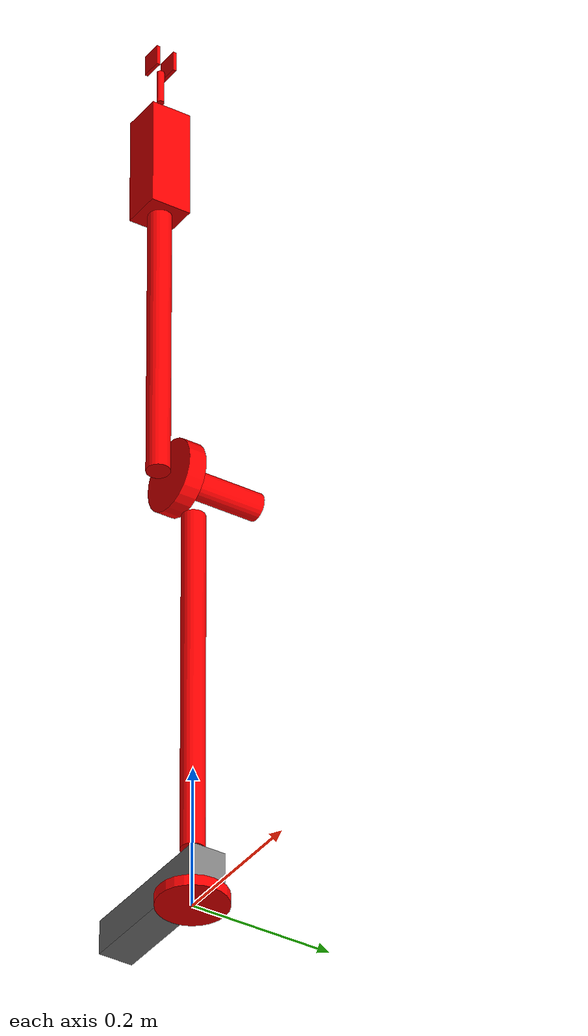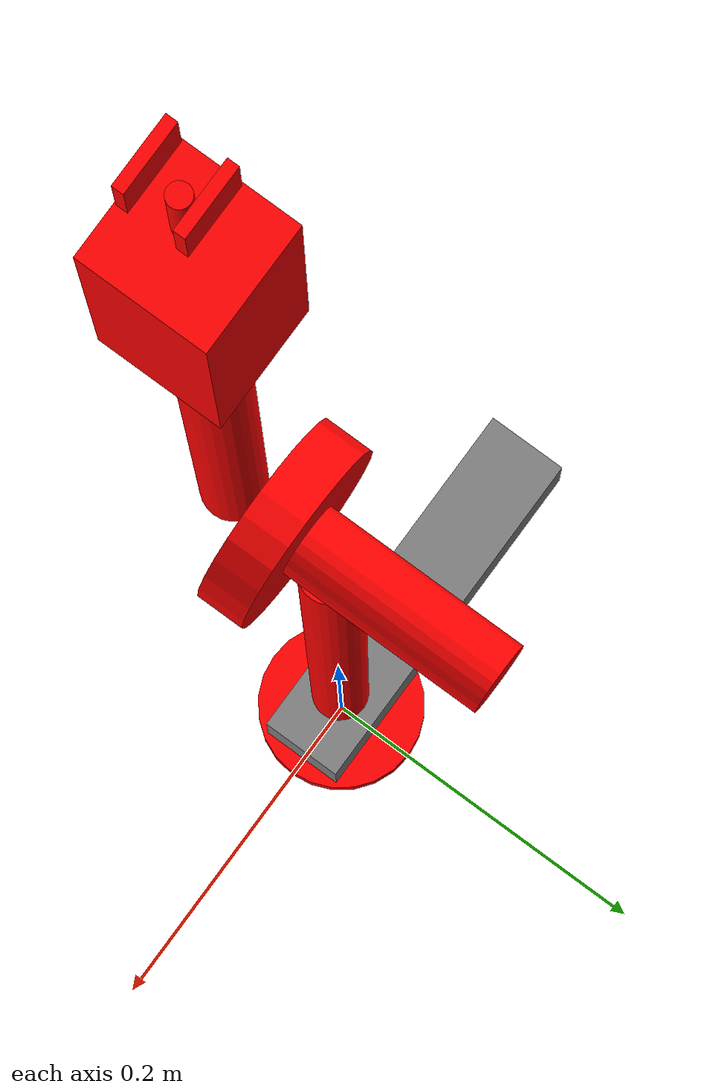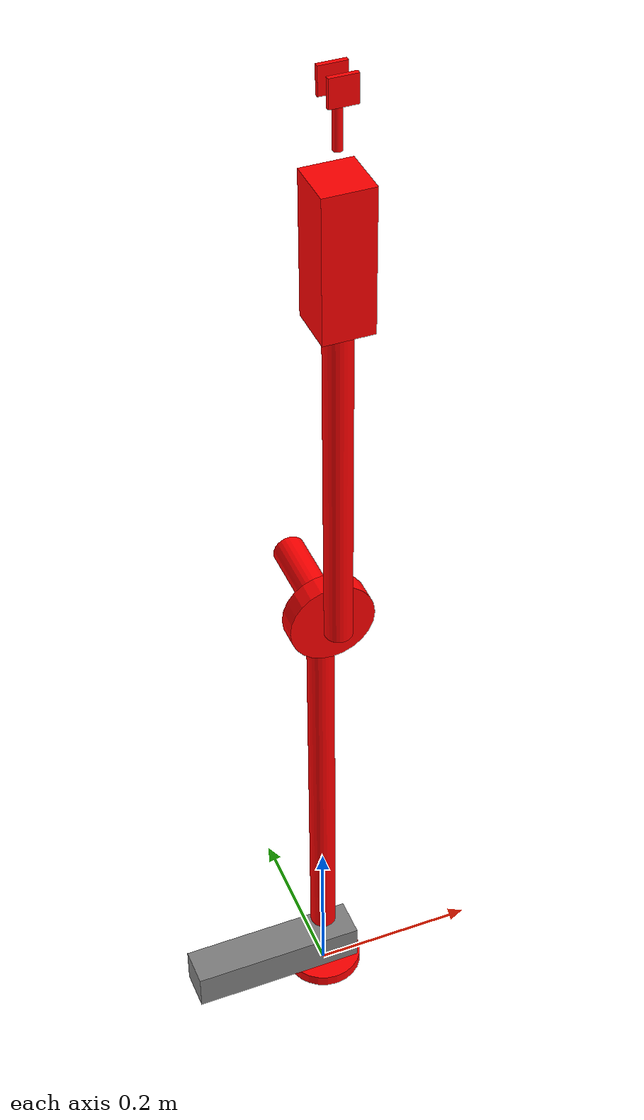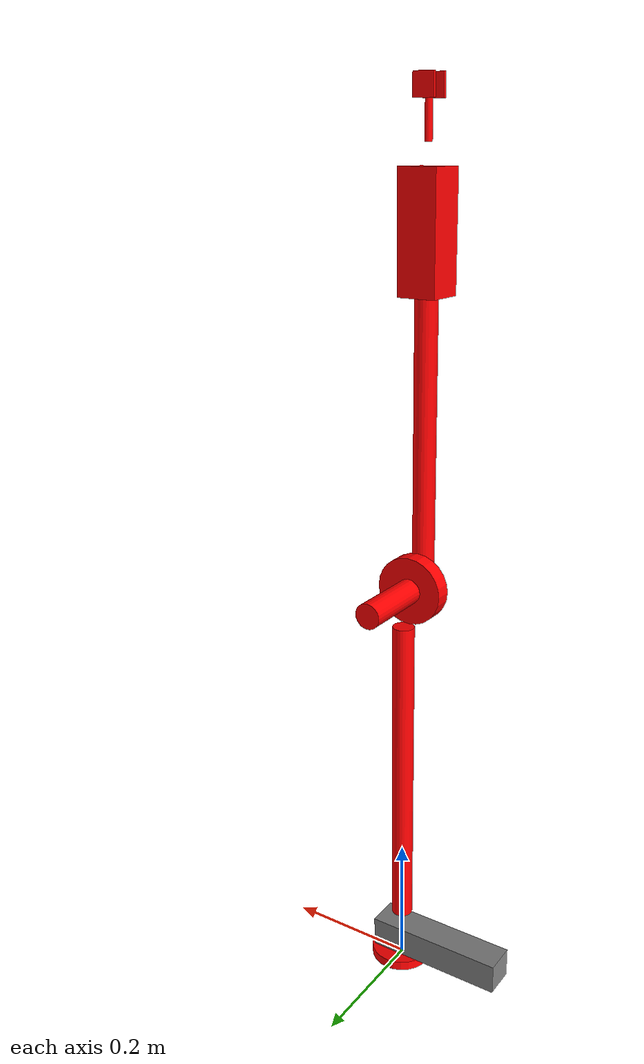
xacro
<?xml version="1.0"?>
<robot xmlns:xacro="http://www.ros.org/wiki/xacro" name="phoenix">
    <xacro:arg name="initial_positions_file" default="initial_positions.yaml" />

    <!-- Import phoenix urdf file -->
    <xacro:include filename="phoenix.xacro" />

    <!-- Import control_xacro -->
    <xacro:include filename="phoenix.ros2_control.xacro" />

    <xacro:phoenix_ros2_control name="FakeSystem" initial_positions_file="$(arg initial_positions_file)"/>

</robot>

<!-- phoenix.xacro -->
<robot name="phoenix" xmlns:xacro="http://www.ros.org/wiki/xacro">
    <xacro:include filename="phoenix_properties.xacro"/>

  <!-- create link fixed to the "world" -->
    <link name="world"/>

  <!-- Import r6bot ros2_control description -->

    <link name="base_link"/>

    <link name="swivel_link">
        <inertial>
            <origin xyz="0.0 0.0 0.0" rpy="0.0 0.0 0.0"/>
            <mass value="0.0"/>
            <inertia ixx="0.0" ixy="0.0" ixz="0.0" iyy="0.0" iyz="0.0" izz="0.0"/>
        </inertial>
        <visual>
            <origin xyz="0.0 0.0 ${-swivel_l/2}" rpy="0.0 0.0 0.0"/>
                <geometry>
                    <cylinder radius="${swivel_r}" length="${swivel_l}"/>
                </geometry>
            <material name="">
                <color rgba="1.0 0.0 0.0 1.0"/>
            </material>
        </visual>
        <collision>
            <origin xyz="0.0 0.0 ${-swivel_l/2}" rpy="0.0 0.0 0.0"/>
                <geometry>
                    <cylinder radius="${swivel_r}" length="${swivel_l}"/>
                </geometry>
        </collision>
    </link>

    <link name="swivel_plate_link">
        <inertial>
            <origin xyz="0.0 0.0 0.0" rpy="0.0 0.0 0.0"/>
            <mass value="0.0"/>
            <inertia ixx="0.0" ixy="0.0" ixz="0.0" iyy="0.0" iyz="0.0" izz="0.0"/>
        </inertial>
        <visual>
            <origin xyz="${-swivel_plate_l / 2} 0.0 ${swivel_plate_h / 2}" rpy="0.0 0.0 0.0"/>
            <geometry>
                <box size="${swivel_plate_l} ${swivel_plate_w} ${swivel_plate_h}"/>
            </geometry>
            <material name="">
                <color rgba="128.0 128.0 128.0 1.0"/>
                <texture filename=""/>
            </material>
        </visual>
        <collision>
            <origin xyz="${-swivel_plate_l / 2} 0.0 ${swivel_plate_h / 2}" rpy="0.0 0.0 0.0"/>
            <geometry>
                <box size="${swivel_plate_l} ${swivel_plate_w} ${swivel_plate_h}"/>
            </geometry>
        </collision>
    </link>

    <link name="upper_arm_link">
        <inertial>
            <origin xyz="0.0 0.0 0.0" rpy="0.0 0.0 0.0"/>
            <mass value="0.0"/>
            <inertia ixx="0.0" ixy="0.0" ixz="0.0" iyy="0.0" iyz="0.0" izz="0.0"/>
        </inertial>
        <visual>
            <origin xyz="0.0 0.0 ${upper_arm_l/2 + 0.028}" rpy="0.0 0.0 0.0"/>
            <geometry>
                <cylinder radius="${upper_arm_r}" length="${upper_arm_l}"/>
            </geometry>
            <material name="">
                <color rgba="1.0 0.0 0.0 1.0"/>
            </material>
        </visual>
        <collision>
             <origin xyz="0.0 0.0 ${upper_arm_l/2 + 0.028}" rpy="0.0 0.0 0.0"/>
            <geometry>
                <cylinder radius="${upper_arm_r}" length="${upper_arm_l}"/>
            </geometry>
        </collision>
    </link>

    <link name="gearbox_link">
        <inertial>
            <origin xyz="0.0 0.0 0.0" rpy="${pi/2} 0.0 0.0"/>
            <mass value="0.0"/>
            <inertia ixx="0.0" ixy="0.0" ixz="0.0" iyy="0.0" iyz="0.0" izz="0.0"/>
        </inertial>
        <visual>
            <origin xyz="0.0 0.0 0.0" rpy="${pi/2} 0.0 0.0"/>
            <geometry>
                <cylinder radius="${gearbox_r}" length="${gearbox_l}"/>
            </geometry>
            <material name="">
                <color rgba="1.0 0.0 0.0 1.0"/>
            </material>
        </visual>
        <collision>
           <origin xyz="0.0 0.0 0.0" rpy="${pi/2} 0.0 0.0"/>
            <geometry>
                <cylinder radius="${gearbox_r}" length="${gearbox_l}"/>
            </geometry>
        </collision>
    </link>

<link name="elbow_motor_link">
    <inertial>
        <origin xyz="0.0 0.0 0.0" rpy="0.0 0.0 0.0"/>
        <mass value="0.0"/>
        <inertia ixx="0.0" ixy="0.0" ixz="0.0" iyy="0.0" iyz="0.0" izz="0.0"/>
    </inertial>
    <visual>
        <origin xyz="0.0 ${elbow_motor_l / 2} 0.0" rpy="${-pi/2} 0.0 0.0"/>
        <geometry>
            <cylinder radius="${elbow_motor_r}" length="${elbow_motor_l}"/>
        </geometry>
        <material name="">
            <color rgba="1.0 0.0 0.0 1.0"/>
            <texture filename=""/>
        </material>
    </visual>
    <collision>
        <origin xyz="0.0 ${elbow_motor_l / 2} 0.0" rpy="${-pi/2} 0.0 0.0"/>
        <geometry>
            <cylinder radius="${elbow_motor_r}" length="${elbow_motor_l}"/>
        </geometry>
    </collision>
</link>

    <link name="lower_arm_link">
        <inertial>
            <origin xyz="0.0 0.0 0.0" rpy="0.0 0.0 0.0"/>
            <mass value="0.0"/>
            <inertia ixx="0.0" ixy="0.0" ixz="0.0" iyy="0.0" iyz="0.0" izz="0.0"/>
        </inertial>
        <visual>
            <origin xyz="0.0 0.0 ${lower_arm_l / 2}" rpy="0.0 0.0 0.0"/>
            <geometry>
                <cylinder radius="${lower_arm_r}" length="${lower_arm_l}"/>
            </geometry>
            <material name="">
                <color rgba="1.0 0.0 0.0 1.0"/>
            </material>
        </visual>
        <collision>
             <origin xyz="0.0 0.0 ${lower_arm_l / 2}" rpy="0.0 0.0 0.0"/>
            <geometry>
                <cylinder radius="${lower_arm_r}" length="${lower_arm_l}"/>
            </geometry>
        </collision>
    </link>

    <link name="wrist_box_link">
        <inertial>
            <origin xyz="0.0 0.0 0.0" rpy="0.0 0.0 0.0"/>
            <mass value="0.0"/>
            <inertia ixx="0.0" ixy="0.0" ixz="0.0" iyy="0.0" iyz="0.0" izz="0.0"/>
        </inertial>
        <visual>
            <origin xyz="0.0 0.0 ${wrist_box_h / 2}" rpy="0.0 ${pi/2} 0.0"/>
            <geometry>
                <box size="${wrist_box_l} ${wrist_box_w} ${wrist_box_h}"/>
            </geometry>
            <material name="">
                <color rgba="1.0 0.0 0.0 1.0"/>
            </material>
        </visual>
        <collision>
            <origin xyz="0.0 0.0 ${wrist_box_h / 2}" rpy="0.0 ${pi/2} 0.0"/>
            <geometry>
                <box size="${wrist_box_l} ${wrist_box_w} ${wrist_box_h}"/>
            </geometry>
        </collision>
    </link>

    <link name="wrist_link">
        <inertial>
            <origin xyz="0.0 0.0 0.0" rpy="0.0 0.0 0.0"/>
            <mass value="0.0"/>
            <inertia ixx="0.0" ixy="0.0" ixz="0.0" iyy="0.0" iyz="0.0" izz="0.0"/>
        </inertial>
        <visual>
            <origin xyz="0.0 0.0 ${wrist_l / 2}" rpy="0.0 0.0 0.0"/>
            <geometry>
                <cylinder radius="${wrist_r}" length="${wrist_l}"/>
            </geometry>
            <material name="">
                <color rgba="1.0 0.0 0.0 1.0"/>
                <texture filename=""/>
            </material>
        </visual>
        <collision>
            <origin xyz="0.0 0.0 ${wrist_l / 2}" rpy="0.0 0.0 0.0"/>
            <geometry>
                <cylinder radius="${wrist_r}" length="${wrist_l}"/>
            </geometry>
        </collision>
    </link>

    <link name="wrist_rotation_link"/>

    <link name="left_finger">
        <inertial>
            <origin xyz="0.0 0.0 0.0" rpy="0.0 0.0 0.0"/>
            <mass value="0.0"/>
            <inertia ixx="0.0" ixy="0.0" ixz="0.0" iyy="0.0" iyz="0.0" izz="0.0"/>
        </inertial>
        <visual>
            <origin xyz="0.0 ${-finger_l/2} ${finger_h / 2}" rpy="0.0 0.0 0.0"/>
            <geometry>
                <box size="${finger_w} ${finger_l} ${finger_h}"/>
            </geometry>
            <material name="">
                <color rgba="1.0 0.0 0.0 1.0"/>
            </material>
        </visual>
        <collision>
            <origin xyz="0.0 ${-finger_l/2} ${finger_h / 2}" rpy="0.0 0.0 0.0"/>
            <geometry>
                <box size="${finger_w} ${finger_l} ${finger_h}"/>
            </geometry>
        </collision>
    </link>

     <link name="right_finger">
        <inertial>
            <origin xyz="0.0 0.0 0.0" rpy="0.0 0.0 0.0"/>
            <mass value="0.0"/>
            <inertia ixx="0.0" ixy="0.0" ixz="0.0" iyy="0.0" iyz="0.0" izz="0.0"/>
        </inertial>
        <visual>
            <origin xyz="0.0 ${finger_l/2} ${finger_h / 2}" rpy="0.0 0.0 0.0"/>
            <geometry>
                <box size="${finger_w} ${finger_l} ${finger_h}"/>
            </geometry>
            <material name="">
                <color rgba="1.0 0.0 0.0 1.0"/>
            </material>
        </visual>
        <collision>
           <origin xyz="0.0 ${finger_l/2} ${finger_h / 2}" rpy="0.0 0.0 0.0"/>
            <geometry>
                <box size="${finger_w} ${finger_l} ${finger_h}"/>
            </geometry>
        </collision>
    </link>

    <joint name="world_base_joint" type="fixed">
        <origin xyz="0.0 0.0 0.0" rpy="0.0 0.0 0.0"/>
        <parent link="world"/>
        <child link="base_link"/>
    </joint>

    <joint name="base_swivel_joint" type="revolute">
        <origin xyz="0.0 0.0 ${swivel_l}" rpy="0.0 0.0 0.0"/>
        <parent link="base_link"/>
        <child link="swivel_link"/>
        <axis xyz="0.0 0.0 1.0"/>
        <limit lower="${-pi}" upper="${pi}" effort="100.0" velocity="100.0"/>
    </joint>

    <joint name="swivel_swivel_plate_joint" type="fixed">
        <origin xyz="0.0375 0.0 0.0" rpy="0.0 0.0 0.0"/>
        <parent link="swivel_link"/>
        <child link="swivel_plate_link"/>
    </joint>

    <joint name="swivel_upper_arm_joint" type="revolute">
        <origin xyz="0.0 0.0 ${0.0381}" rpy="0.0 0.0 0.0"/>
        <parent link="swivel_link"/>
        <child link="upper_arm_link"/>
        <axis xyz="0.0 1.0 0.0"/>
        <limit lower="${-pi/2}" upper="${pi/2}" effort="100.0" velocity="100.0"/>
    </joint>

    <joint name="upper_arm_gearbox_joint" type="fixed">
        <origin xyz="0.0 ${-gearbox_l} ${0.028 + upper_arm_l + gearbox_r}" rpy="0.0 0.0 0.0"/>
        <parent link="upper_arm_link"/>
        <child link="gearbox_link"/>
    </joint>

    <joint name="gearbox_lower_arm_joint" type="revolute">
        <origin xyz="0.0 ${-lower_arm_r - gearbox_l / 2} 0.0" rpy="0.0 0.0 0.0"/>
        <parent link="gearbox_link"/>
        <child link="lower_arm_link"/>
        <axis xyz="0.0 1.0 0.0"/>
        <limit lower="${-pi}" upper="${pi}" effort="100.0" velocity="100.0"/>
    </joint>

    <joint name="gearbox_elbow_motor_link" type="fixed">
        <origin xyz="0.0 ${gearbox_l / 2} 0.0" rpy="0.0 0.0 0.0"/>
        <parent link="gearbox_link"/>
        <child link="elbow_motor_link"/>
    </joint>

    <joint name="lower_arm_wrist_box_joint" type="fixed">
        <origin xyz="0.0 0.0 ${lower_arm_l - 0.04323}" rpy="0.0 0.0 0.0"/>
        <parent link="lower_arm_link"/>
        <child link="wrist_box_link"/>
    </joint>

    <joint name="lower_arm_wrist_joint" type="revolute">
        <origin xyz="0.0 0.0 ${lower_arm_l + 0.0927471}" rpy="0.0 0.0 0.0"/>
        <parent link="lower_arm_link"/>
        <child link="wrist_link"/>
        <axis xyz="0.0 1.0 0.0"/>
        <limit lower="${-pi}" upper="${pi}" effort="100.0" velocity="100.0"/>
    </joint>

    <joint name="wrist_wrist_rotation_joint" type="revolute">
        <origin xyz="0.0 0.0 ${wrist_l}" rpy="0.0 0.0 0.0"/>
        <parent link="wrist_link"/>
        <child link="wrist_rotation_link"/>
        <axis xyz="0.0 0.0 1.0"/>
        <limit lower="-${pi}" upper="${pi}" effort="100.0" velocity="100.0"/>
    </joint>

    <joint name="wrist_rotation_left_finger_joint" type="revolute">
        <origin xyz="0.0 ${-finger_l * 2} 0.0" rpy="0.0 0.0 0.0"/>
        <parent link="wrist_rotation_link"/>
        <child link="left_finger"/>
        <axis xyz="1.0 0.0 0.0"/>
        <limit lower="${-pi/2}" upper="${pi/2}" effort="100.0" velocity="100.0"/>
    </joint>

     <joint name="wrist_rotation_right_finger_joint" type="revolute">
        <origin xyz="0.0 ${finger_l * 2} 0.0" rpy="0.0 0.0 0.0"/>
        <parent link="wrist_rotation_link"/>
        <child link="right_finger"/>
        <axis xyz="1.0 0.0 0.0"/>
        <mimic joint="wrist_rotation_left_finger_joint" multiplier="${-1}"/>
        <limit lower="${-pi/2}" upper="${pi/2}" effort="100.0" velocity="100.0"/>
    </joint>

</robot>

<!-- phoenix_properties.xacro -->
<robot xmlns:xacro="http://www.ros.org/wiki/xacro">

    <xacro:property name="swivel_r" value="0.0475"/>
    <xacro:property name="swivel_l" value="0.015"/>

    <xacro:property name="upper_arm_r" value="0.016"/>
    <xacro:property name="upper_arm_l" value="0.5"/>

    <xacro:property name="gearbox_r" value="0.05"/>
    <xacro:property name="gearbox_l" value="0.025"/>

    <xacro:property name="lower_arm_r" value="0.016"/>
    <xacro:property name="lower_arm_l" value="0.5"/>

    <xacro:property name="wrist_r" value="0.005"/>
    <xacro:property name="wrist_l" value="0.05"/>

    <xacro:property name="finger_l" value="0.005"/>
    <xacro:property name="finger_w" value="0.03"/>
    <xacro:property name="finger_h" value="0.03"/>

    <xacro:property name="swivel_plate_l" value="0.215"/>
    <xacro:property name="swivel_plate_w" value="0.048"/>
    <xacro:property name="swivel_plate_h" value="0.048"/>

    <xacro:property name="elbow_motor_r" value="0.01875"/>
    <xacro:property name="elbow_motor_l" value="0.1075"/>

    <xacro:property name="wrist_box_l" value="0.16"/>
    <xacro:property name="wrist_box_w" value="0.05735"/>
    <xacro:property name="wrist_box_h" value="0.056"/>

    <xacro:property name="mounting_pole_r" value="0.016"/>
    <xacro:property name="mounting_pole_l" value="0.33"/>

    <xacro:property name="actuator_base_r" value="0.0152"/>
    <xacro:property name="actuator_base_l" value="0.272796"/>

    <xacro:property name="actuator_shaft_r" value="0.01"/>
    <xacro:property name="actuator_shaft_l" value="0.15"/>
</robot>
